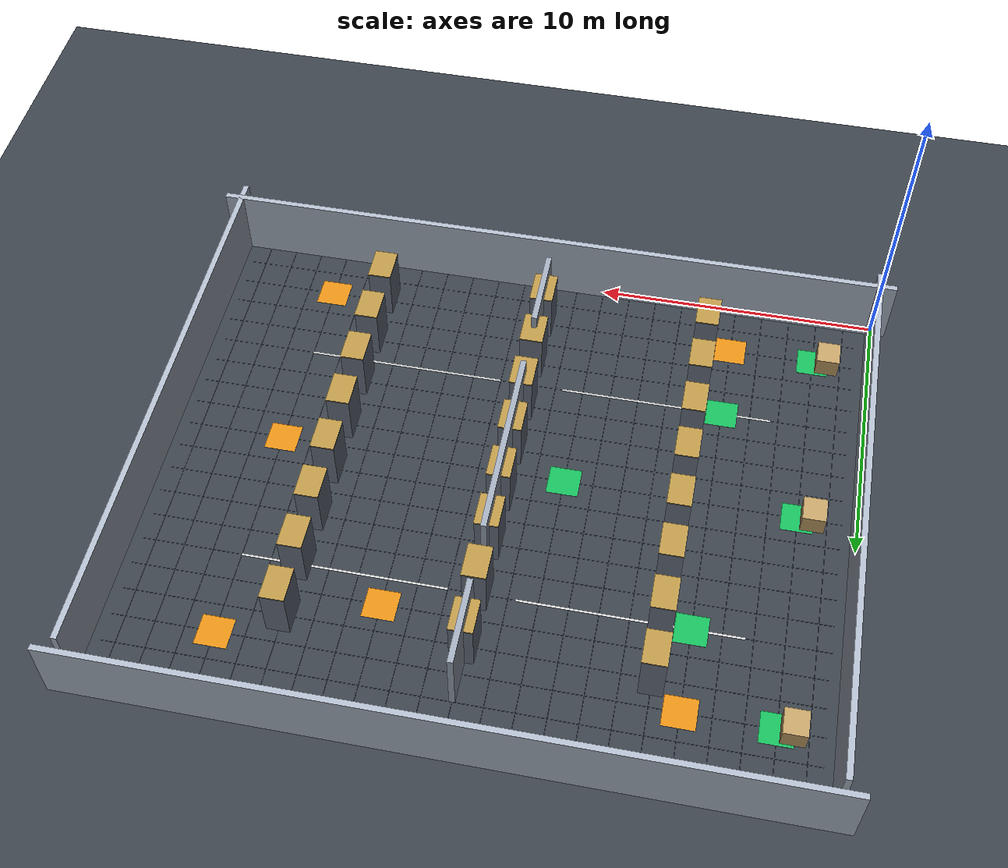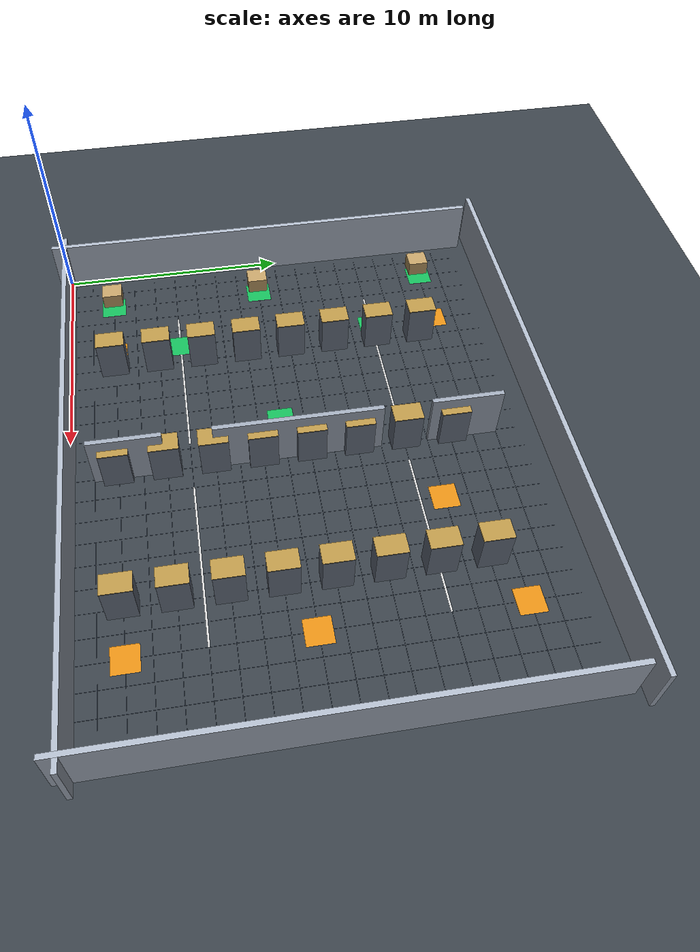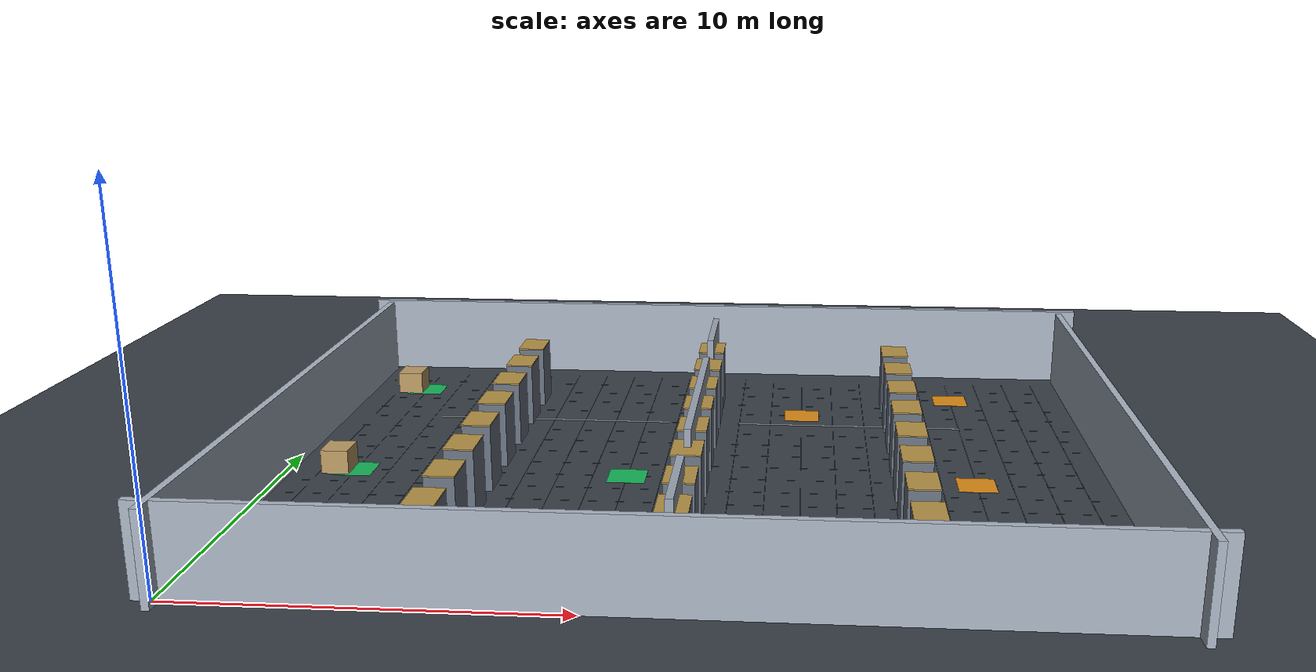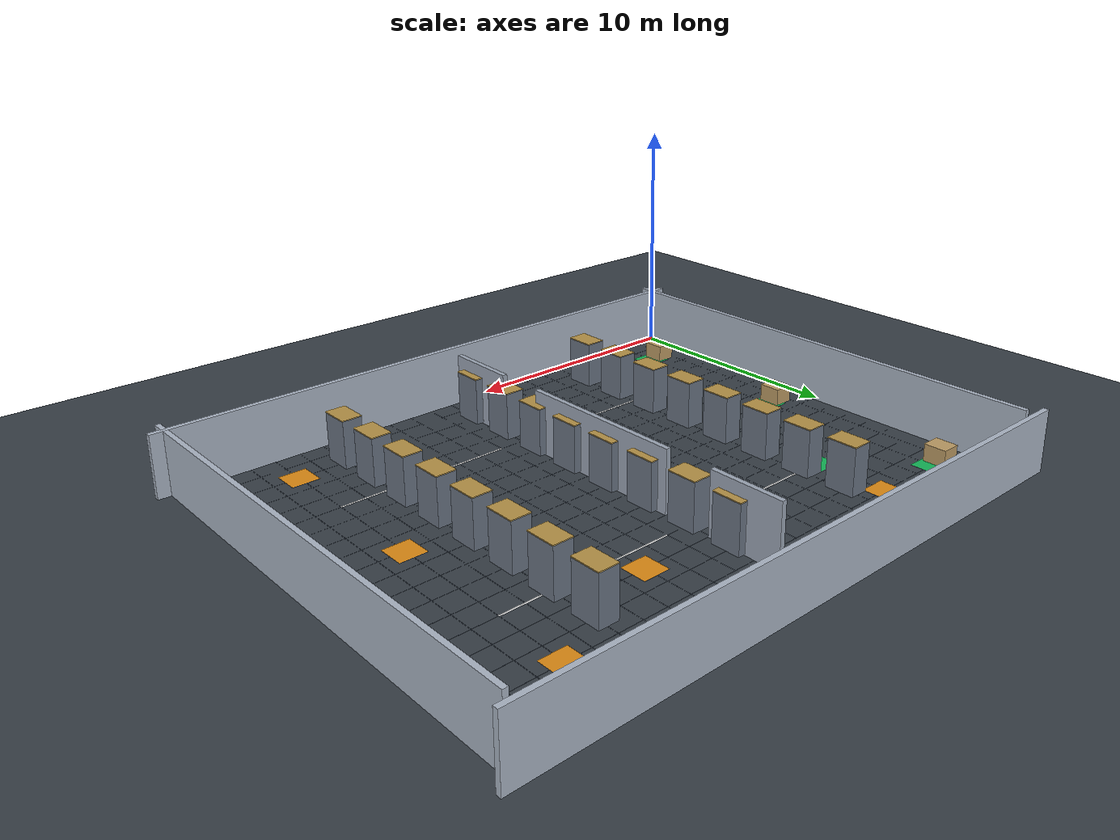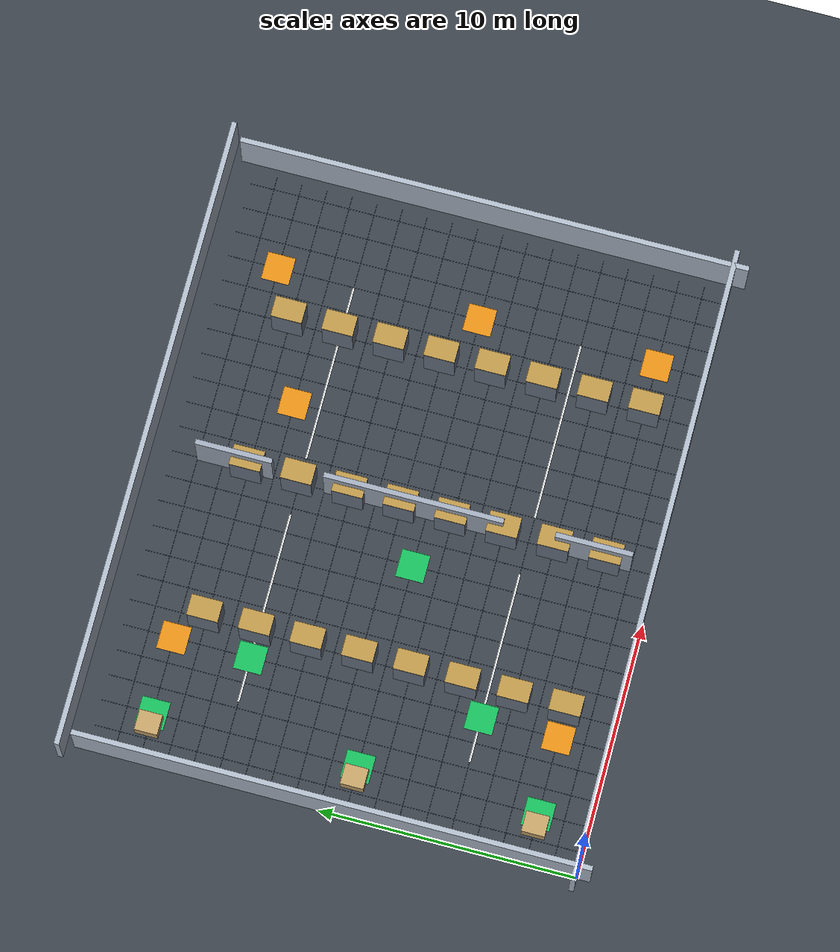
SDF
<?xml version="1.0"?>
<sdf version="1.10">
  <world name="warehouse_s4_debug">

        <physics name="default" type="ode">
      <real_time_update_rate>0</real_time_update_rate>
      <max_step_size>0.01</max_step_size>
      <real_time_factor>1.0</real_time_factor>
      <ode>
        <solver>
          <type>quick</type>
          <iters>30</iters>
          <sor>1.3</sor>
        </solver>
        <constraints>
          <cfm>0</cfm>
          <erp>0.2</erp>
          <contact_max_correcting_vel>100</contact_max_correcting_vel>
          <contact_surface_layer>0.001</contact_surface_layer>
        </constraints>
      </ode>
    </physics>

        <plugin filename="gz-sim-physics-system" name="gz::sim::systems::Physics"/>
    <plugin filename="gz-sim-user-commands-system" name="gz::sim::systems::UserCommands"/>
    <plugin filename="gz-sim-scene-broadcaster-system" name="gz::sim::systems::SceneBroadcaster"/>
    <plugin filename="gz-sim-sensors-system" name="gz::sim::systems::Sensors">
      <render_engine>ogre2</render_engine>
    </plugin>
    <plugin filename="gz-sim-imu-system" name="gz::sim::systems::Imu"/>
    <plugin filename="gz-sim-contact-system" name="gz::sim::systems::Contact"/>

    <gravity>0 0 -9.81</gravity>
    <magnetic_field>6e-06 2.3e-05 -4.2e-05</magnetic_field>
    <atmosphere type="adiabatic"/>

        <gui fullscreen="0">
      <plugin filename="MinimalScene" name="3D View">
        <gz-gui>
          <title>SIH26123 — DEBUG Mode</title>
          <property type="bool" key="showTitleBar">false</property>
          <property type="string" key="state">docked</property>
        </gz-gui>
        <engine>ogre2</engine>
        <scene>scene</scene>
        <ambient_light>0.5 0.5 0.5</ambient_light>
        <background_color>0.10 0.12 0.15</background_color>
        <camera_pose>12.5 -4.5 16.5 0 0.88 1.5708</camera_pose>
      </plugin>
      <plugin filename="GzSceneManager" name="Scene Manager">
        <gz-gui>
          <property key="resizable" type="bool">false</property>
          <property key="width" type="double">5</property>
          <property key="height" type="double">5</property>
          <property key="state" type="string">floating</property>
          <property key="showTitleBar" type="bool">false</property>
        </gz-gui>
      </plugin>
      <plugin filename="InteractiveViewControl" name="Interactive view control">
        <gz-gui>
          <property key="resizable" type="bool">false</property>
          <property key="width" type="double">5</property>
          <property key="height" type="double">5</property>
          <property key="state" type="string">floating</property>
          <property key="showTitleBar" type="bool">false</property>
        </gz-gui>
      </plugin>
      <plugin filename="CameraTracking" name="Camera Tracking">
        <gz-gui>
          <property key="resizable" type="bool">false</property>
          <property key="width" type="double">5</property>
          <property key="height" type="double">5</property>
          <property key="state" type="string">floating</property>
          <property key="showTitleBar" type="bool">false</property>
        </gz-gui>
      </plugin>
      <plugin filename="WorldControl" name="World control">
        <gz-gui>
          <title>World control</title>
          <property type="bool" key="showTitleBar">false</property>
          <property type="bool" key="resizable">false</property>
          <property type="double" key="height">72</property>
          <property type="double" key="z">1</property>
          <property type="string" key="state">floating</property>
          <anchors target="3D View">
            <line own="left" target="left"/>
            <line own="bottom" target="bottom"/>
          </anchors>
        </gz-gui>
        <play_pause>true</play_pause>
        <step>true</step>
        <start_paused>false</start_paused>
        <use_event>true</use_event>
      </plugin>
      <plugin filename="WorldStats" name="World stats">
        <gz-gui>
          <title>World stats</title>
          <property type="bool" key="showTitleBar">false</property>
          <property type="bool" key="resizable">false</property>
          <property type="double" key="height">110</property>
          <property type="double" key="width">290</property>
          <property type="double" key="z">1</property>
          <property type="string" key="state">floating</property>
          <anchors target="3D View">
            <line own="right" target="right"/>
            <line own="bottom" target="bottom"/>
          </anchors>
        </gz-gui>
        <sim_time>true</sim_time>
        <real_time>true</real_time>
        <real_time_factor>true</real_time_factor>
        <iterations>true</iterations>
      </plugin>
    </gui>

        <scene>
      <ambient>0.5 0.5 0.55 1</ambient>
      <background>0.10 0.12 0.15 1</background>
      <shadows>true</shadows>
      <grid>false</grid>
      <origin_visual>false</origin_visual>
    </scene>

        <light name="sun" type="directional">
      <cast_shadows>true</cast_shadows>
      <pose>0 0 10 0 0 0</pose>
      <diffuse>0.85 0.85 0.88 1</diffuse>
      <specular>0.15 0.15 0.15 1</specular>
      <attenuation>
        <range>1000</range>
        <constant>0.9</constant>
        <linear>0.01</linear>
        <quadratic>0.001</quadratic>
      </attenuation>
      <direction>-0.5 0.1 -0.9</direction>
    </light>

        <model name="ground_plane">
      <static>true</static>
      <link name="link">
        <collision name="collision">
          <geometry>
            <plane><normal>0 0 1</normal><size>25 20</size></plane>
          </geometry>
        </collision>
        <visual name="visual">
          <geometry>
            <plane><normal>0 0 1</normal><size>25 20</size></plane>
          </geometry>
          <material>
            <ambient>0.20 0.22 0.25 1</ambient>
            <diffuse>0.22 0.25 0.28 1</diffuse>
            <specular>0.08 0.08 0.08 1</specular>
          </material>
        </visual>
        <pose>12.0 9.5 0 0 0 0</pose>
      </link>
    </model>

        <model name="wall_west">
      <static>true</static>
      <pose>0.1 9.5 1.25 0 0 0</pose>
      <link name="link">
        <collision name="collision">
          <geometry><box><size>0.2 20.0 2.5</size></box></geometry>
        </collision>
        <visual name="visual">
          <geometry><box><size>0.2 20.0 2.5</size></box></geometry>
          <material>
            <ambient>0.60 0.63 0.68 1</ambient>
            <diffuse>0.68 0.72 0.78 1</diffuse>
            <specular>0.08 0.08 0.08 1</specular>
          </material>
        </visual>
      </link>
    </model>

    <model name="wall_east">
      <static>true</static>
      <pose>23.9 9.5 1.25 0 0 0</pose>
      <link name="link">
        <collision name="collision">
          <geometry><box><size>0.2 20.0 2.5</size></box></geometry>
        </collision>
        <visual name="visual">
          <geometry><box><size>0.2 20.0 2.5</size></box></geometry>
          <material>
            <ambient>0.60 0.63 0.68 1</ambient>
            <diffuse>0.68 0.72 0.78 1</diffuse>
            <specular>0.08 0.08 0.08 1</specular>
          </material>
        </visual>
      </link>
    </model>

    <model name="wall_south">
      <static>true</static>
      <pose>12.0 19.9 1.25 0 0 0</pose>
      <link name="link">
        <collision name="collision">
          <geometry><box><size>25.0 0.2 2.5</size></box></geometry>
        </collision>
        <visual name="visual">
          <geometry><box><size>25.0 0.2 2.5</size></box></geometry>
          <material>
            <ambient>0.60 0.63 0.68 1</ambient>
            <diffuse>0.68 0.72 0.78 1</diffuse>
            <specular>0.08 0.08 0.08 1</specular>
          </material>
        </visual>
      </link>
    </model>

    <model name="wall_north">
      <static>true</static>
      <pose>12.0 0.1 1.25 0 0 0</pose>
      <link name="link">
        <collision name="collision">
          <geometry><box><size>25.0 0.2 2.5</size></box></geometry>
        </collision>
        <visual name="visual">
          <geometry><box><size>25.0 0.2 2.5</size></box></geometry>
          <material>
            <ambient>0.60 0.63 0.68 1</ambient>
            <diffuse>0.68 0.72 0.78 1</diffuse>
            <specular>0.08 0.08 0.08 1</specular>
          </material>
        </visual>
      </link>
    </model>

        <model name="wall_choke_010">
      <static>true</static>
      <pose>12.0 2.50 1.25 0 0 0</pose>
      <link name="link">
        <collision name="col">
          <geometry><box><size>0.2 3.0 2.5</size></box></geometry>
        </collision>
        <visual name="vis">
          <geometry><box><size>0.2 3.0 2.5</size></box></geometry>
          <material>
            <ambient>0.55 0.58 0.62 1</ambient>
            <diffuse>0.62 0.66 0.72 1</diffuse>
            <specular>0 0 0 0</specular>
          </material>
        </visual>
      </link>
    </model>

    <model name="wall_choke_060">
      <static>true</static>
      <pose>12.0 9.50 1.25 0 0 0</pose>
      <link name="link">
        <collision name="col">
          <geometry><box><size>0.2 7.0 2.5</size></box></geometry>
        </collision>
        <visual name="vis">
          <geometry><box><size>0.2 7.0 2.5</size></box></geometry>
          <material>
            <ambient>0.55 0.58 0.62 1</ambient>
            <diffuse>0.62 0.66 0.72 1</diffuse>
            <specular>0 0 0 0</specular>
          </material>
        </visual>
      </link>
    </model>

    <model name="wall_choke_150">
      <static>true</static>
      <pose>12.0 16.50 1.25 0 0 0</pose>
      <link name="link">
        <collision name="col">
          <geometry><box><size>0.2 3.0 2.5</size></box></geometry>
        </collision>
        <visual name="vis">
          <geometry><box><size>0.2 3.0 2.5</size></box></geometry>
          <material>
            <ambient>0.55 0.58 0.62 1</ambient>
            <diffuse>0.62 0.66 0.72 1</diffuse>
            <specular>0 0 0 0</specular>
          </material>
        </visual>
      </link>
    </model>

        <model name="floor_grid">
      <static>true</static>
      <pose>0 0 0 0 0 0</pose>
      <link name="link">
        <visual name="gx_01"><pose>1.0 9.5 0.001 0 0 0</pose><geometry><box><size>0.015 19.0 0.001</size></box></geometry><material><ambient>0.13 0.17 0.22 1</ambient><diffuse>0.15 0.19 0.25 1</diffuse></material></visual>
    <visual name="gx_02"><pose>2.0 9.5 0.001 0 0 0</pose><geometry><box><size>0.015 19.0 0.001</size></box></geometry><material><ambient>0.13 0.17 0.22 1</ambient><diffuse>0.15 0.19 0.25 1</diffuse></material></visual>
    <visual name="gx_03"><pose>3.0 9.5 0.001 0 0 0</pose><geometry><box><size>0.015 19.0 0.001</size></box></geometry><material><ambient>0.13 0.17 0.22 1</ambient><diffuse>0.15 0.19 0.25 1</diffuse></material></visual>
    <visual name="gx_04"><pose>4.0 9.5 0.001 0 0 0</pose><geometry><box><size>0.015 19.0 0.001</size></box></geometry><material><ambient>0.13 0.17 0.22 1</ambient><diffuse>0.15 0.19 0.25 1</diffuse></material></visual>
    <visual name="gx_05"><pose>5.0 9.5 0.001 0 0 0</pose><geometry><box><size>0.015 19.0 0.001</size></box></geometry><material><ambient>0.13 0.17 0.22 1</ambient><diffuse>0.15 0.19 0.25 1</diffuse></material></visual>
    <visual name="gx_06"><pose>6.0 9.5 0.001 0 0 0</pose><geometry><box><size>0.015 19.0 0.001</size></box></geometry><material><ambient>0.13 0.17 0.22 1</ambient><diffuse>0.15 0.19 0.25 1</diffuse></material></visual>
    <visual name="gx_07"><pose>7.0 9.5 0.001 0 0 0</pose><geometry><box><size>0.015 19.0 0.001</size></box></geometry><material><ambient>0.13 0.17 0.22 1</ambient><diffuse>0.15 0.19 0.25 1</diffuse></material></visual>
    <visual name="gx_08"><pose>8.0 9.5 0.001 0 0 0</pose><geometry><box><size>0.015 19.0 0.001</size></box></geometry><material><ambient>0.13 0.17 0.22 1</ambient><diffuse>0.15 0.19 0.25 1</diffuse></material></visual>
    <visual name="gx_09"><pose>9.0 9.5 0.001 0 0 0</pose><geometry><box><size>0.015 19.0 0.001</size></box></geometry><material><ambient>0.13 0.17 0.22 1</ambient><diffuse>0.15 0.19 0.25 1</diffuse></material></visual>
    <visual name="gx_10"><pose>10.0 9.5 0.001 0 0 0</pose><geometry><box><size>0.015 19.0 0.001</size></box></geometry><material><ambient>0.13 0.17 0.22 1</ambient><diffuse>0.15 0.19 0.25 1</diffuse></material></visual>
    <visual name="gx_11"><pose>11.0 9.5 0.001 0 0 0</pose><geometry><box><size>0.015 19.0 0.001</size></box></geometry><material><ambient>0.13 0.17 0.22 1</ambient><diffuse>0.15 0.19 0.25 1</diffuse></material></visual>
    <visual name="gx_12"><pose>12.0 9.5 0.001 0 0 0</pose><geometry><box><size>0.015 19.0 0.001</size></box></geometry><material><ambient>0.13 0.17 0.22 1</ambient><diffuse>0.15 0.19 0.25 1</diffuse></material></visual>
    <visual name="gx_13"><pose>13.0 9.5 0.001 0 0 0</pose><geometry><box><size>0.015 19.0 0.001</size></box></geometry><material><ambient>0.13 0.17 0.22 1</ambient><diffuse>0.15 0.19 0.25 1</diffuse></material></visual>
    <visual name="gx_14"><pose>14.0 9.5 0.001 0 0 0</pose><geometry><box><size>0.015 19.0 0.001</size></box></geometry><material><ambient>0.13 0.17 0.22 1</ambient><diffuse>0.15 0.19 0.25 1</diffuse></material></visual>
    <visual name="gx_15"><pose>15.0 9.5 0.001 0 0 0</pose><geometry><box><size>0.015 19.0 0.001</size></box></geometry><material><ambient>0.13 0.17 0.22 1</ambient><diffuse>0.15 0.19 0.25 1</diffuse></material></visual>
    <visual name="gx_16"><pose>16.0 9.5 0.001 0 0 0</pose><geometry><box><size>0.015 19.0 0.001</size></box></geometry><material><ambient>0.13 0.17 0.22 1</ambient><diffuse>0.15 0.19 0.25 1</diffuse></material></visual>
    <visual name="gx_17"><pose>17.0 9.5 0.001 0 0 0</pose><geometry><box><size>0.015 19.0 0.001</size></box></geometry><material><ambient>0.13 0.17 0.22 1</ambient><diffuse>0.15 0.19 0.25 1</diffuse></material></visual>
    <visual name="gx_18"><pose>18.0 9.5 0.001 0 0 0</pose><geometry><box><size>0.015 19.0 0.001</size></box></geometry><material><ambient>0.13 0.17 0.22 1</ambient><diffuse>0.15 0.19 0.25 1</diffuse></material></visual>
    <visual name="gx_19"><pose>19.0 9.5 0.001 0 0 0</pose><geometry><box><size>0.015 19.0 0.001</size></box></geometry><material><ambient>0.13 0.17 0.22 1</ambient><diffuse>0.15 0.19 0.25 1</diffuse></material></visual>
    <visual name="gx_20"><pose>20.0 9.5 0.001 0 0 0</pose><geometry><box><size>0.015 19.0 0.001</size></box></geometry><material><ambient>0.13 0.17 0.22 1</ambient><diffuse>0.15 0.19 0.25 1</diffuse></material></visual>
    <visual name="gx_21"><pose>21.0 9.5 0.001 0 0 0</pose><geometry><box><size>0.015 19.0 0.001</size></box></geometry><material><ambient>0.13 0.17 0.22 1</ambient><diffuse>0.15 0.19 0.25 1</diffuse></material></visual>
    <visual name="gx_22"><pose>22.0 9.5 0.001 0 0 0</pose><geometry><box><size>0.015 19.0 0.001</size></box></geometry><material><ambient>0.13 0.17 0.22 1</ambient><diffuse>0.15 0.19 0.25 1</diffuse></material></visual>
    <visual name="gx_23"><pose>23.0 9.5 0.001 0 0 0</pose><geometry><box><size>0.015 19.0 0.001</size></box></geometry><material><ambient>0.13 0.17 0.22 1</ambient><diffuse>0.15 0.19 0.25 1</diffuse></material></visual>
    <visual name="gy_01"><pose>12.0 1.0 0.001 0 0 0</pose><geometry><box><size>23.0 0.015 0.001</size></box></geometry><material><ambient>0.13 0.17 0.22 1</ambient><diffuse>0.15 0.19 0.25 1</diffuse></material></visual>
    <visual name="gy_02"><pose>12.0 2.0 0.001 0 0 0</pose><geometry><box><size>23.0 0.015 0.001</size></box></geometry><material><ambient>0.13 0.17 0.22 1</ambient><diffuse>0.15 0.19 0.25 1</diffuse></material></visual>
    <visual name="gy_03"><pose>12.0 3.0 0.001 0 0 0</pose><geometry><box><size>23.0 0.015 0.001</size></box></geometry><material><ambient>0.13 0.17 0.22 1</ambient><diffuse>0.15 0.19 0.25 1</diffuse></material></visual>
    <visual name="gy_04"><pose>12.0 4.0 0.001 0 0 0</pose><geometry><box><size>23.0 0.015 0.001</size></box></geometry><material><ambient>0.13 0.17 0.22 1</ambient><diffuse>0.15 0.19 0.25 1</diffuse></material></visual>
    <visual name="gy_05"><pose>12.0 5.0 0.001 0 0 0</pose><geometry><box><size>23.0 0.015 0.001</size></box></geometry><material><ambient>0.13 0.17 0.22 1</ambient><diffuse>0.15 0.19 0.25 1</diffuse></material></visual>
    <visual name="gy_06"><pose>12.0 6.0 0.001 0 0 0</pose><geometry><box><size>23.0 0.015 0.001</size></box></geometry><material><ambient>0.13 0.17 0.22 1</ambient><diffuse>0.15 0.19 0.25 1</diffuse></material></visual>
    <visual name="gy_07"><pose>12.0 7.0 0.001 0 0 0</pose><geometry><box><size>23.0 0.015 0.001</size></box></geometry><material><ambient>0.13 0.17 0.22 1</ambient><diffuse>0.15 0.19 0.25 1</diffuse></material></visual>
    <visual name="gy_08"><pose>12.0 8.0 0.001 0 0 0</pose><geometry><box><size>23.0 0.015 0.001</size></box></geometry><material><ambient>0.13 0.17 0.22 1</ambient><diffuse>0.15 0.19 0.25 1</diffuse></material></visual>
    <visual name="gy_09"><pose>12.0 9.0 0.001 0 0 0</pose><geometry><box><size>23.0 0.015 0.001</size></box></geometry><material><ambient>0.13 0.17 0.22 1</ambient><diffuse>0.15 0.19 0.25 1</diffuse></material></visual>
    <visual name="gy_10"><pose>12.0 10.0 0.001 0 0 0</pose><geometry><box><size>23.0 0.015 0.001</size></box></geometry><material><ambient>0.13 0.17 0.22 1</ambient><diffuse>0.15 0.19 0.25 1</diffuse></material></visual>
    <visual name="gy_11"><pose>12.0 11.0 0.001 0 0 0</pose><geometry><box><size>23.0 0.015 0.001</size></box></geometry><material><ambient>0.13 0.17 0.22 1</ambient><diffuse>0.15 0.19 0.25 1</diffuse></material></visual>
    <visual name="gy_12"><pose>12.0 12.0 0.001 0 0 0</pose><geometry><box><size>23.0 0.015 0.001</size></box></geometry><material><ambient>0.13 0.17 0.22 1</ambient><diffuse>0.15 0.19 0.25 1</diffuse></material></visual>
    <visual name="gy_13"><pose>12.0 13.0 0.001 0 0 0</pose><geometry><box><size>23.0 0.015 0.001</size></box></geometry><material><ambient>0.13 0.17 0.22 1</ambient><diffuse>0.15 0.19 0.25 1</diffuse></material></visual>
    <visual name="gy_14"><pose>12.0 14.0 0.001 0 0 0</pose><geometry><box><size>23.0 0.015 0.001</size></box></geometry><material><ambient>0.13 0.17 0.22 1</ambient><diffuse>0.15 0.19 0.25 1</diffuse></material></visual>
    <visual name="gy_15"><pose>12.0 15.0 0.001 0 0 0</pose><geometry><box><size>23.0 0.015 0.001</size></box></geometry><material><ambient>0.13 0.17 0.22 1</ambient><diffuse>0.15 0.19 0.25 1</diffuse></material></visual>
    <visual name="gy_16"><pose>12.0 16.0 0.001 0 0 0</pose><geometry><box><size>23.0 0.015 0.001</size></box></geometry><material><ambient>0.13 0.17 0.22 1</ambient><diffuse>0.15 0.19 0.25 1</diffuse></material></visual>
    <visual name="gy_17"><pose>12.0 17.0 0.001 0 0 0</pose><geometry><box><size>23.0 0.015 0.001</size></box></geometry><material><ambient>0.13 0.17 0.22 1</ambient><diffuse>0.15 0.19 0.25 1</diffuse></material></visual>
    <visual name="gy_18"><pose>12.0 18.0 0.001 0 0 0</pose><geometry><box><size>23.0 0.015 0.001</size></box></geometry><material><ambient>0.13 0.17 0.22 1</ambient><diffuse>0.15 0.19 0.25 1</diffuse></material></visual>
      </link>
    </model>

        <model name="ln_NW">
      <static>true</static>
      <pose>7.0 14.0 0.002 0 0 0</pose>
      <link name="link">
        <visual name="lane">
          <geometry><box><size>7.5 0.08 0.002</size></box></geometry>
          <material>
            <ambient>0.75 0.75 0.75 1</ambient>
            <diffuse>0.85 0.85 0.85 1</diffuse>
            <specular>0 0 0 0</specular>
          </material>
        </visual>
      </link>
    </model>

    <model name="ln_NE">
      <static>true</static>
      <pose>16.5 14.0 0.002 0 0 0</pose>
      <link name="link">
        <visual name="lane">
          <geometry><box><size>7.0 0.08 0.002</size></box></geometry>
          <material>
            <ambient>0.75 0.75 0.75 1</ambient>
            <diffuse>0.85 0.85 0.85 1</diffuse>
            <specular>0 0 0 0</specular>
          </material>
        </visual>
      </link>
    </model>

    <model name="ln_SW">
      <static>true</static>
      <pose>7.0 5.0 0.002 0 0 0</pose>
      <link name="link">
        <visual name="lane">
          <geometry><box><size>7.5 0.08 0.002</size></box></geometry>
          <material>
            <ambient>0.75 0.75 0.75 1</ambient>
            <diffuse>0.85 0.85 0.85 1</diffuse>
            <specular>0 0 0 0</specular>
          </material>
        </visual>
      </link>
    </model>

    <model name="ln_SE">
      <static>true</static>
      <pose>16.5 5.0 0.002 0 0 0</pose>
      <link name="link">
        <visual name="lane">
          <geometry><box><size>7.0 0.08 0.002</size></box></geometry>
          <material>
            <ambient>0.75 0.75 0.75 1</ambient>
            <diffuse>0.85 0.85 0.85 1</diffuse>
            <specular>0 0 0 0</specular>
          </material>
        </visual>
      </link>
    </model>

        <model name="pad_P1">
      <static>true</static>
      <pose>2.0 17.0 0.003 0 0 0</pose>
      <link name="link">
        <visual name="pad">
          <geometry><box><size>1.10 1.10 0.004</size></box></geometry>
          <material>
            <ambient>0.08 0.72 0.35 1</ambient>
            <diffuse>0.08 0.72 0.35 1</diffuse>
            <specular>0 0 0 0</specular>
          </material>
        </visual>
      </link>
    </model>

    <model name="pad_P2">
      <static>true</static>
      <pose>2.0 9.0 0.003 0 0 0</pose>
      <link name="link">
        <visual name="pad">
          <geometry><box><size>1.10 1.10 0.004</size></box></geometry>
          <material>
            <ambient>0.08 0.72 0.35 1</ambient>
            <diffuse>0.08 0.72 0.35 1</diffuse>
            <specular>0 0 0 0</specular>
          </material>
        </visual>
      </link>
    </model>

    <model name="pad_P3">
      <static>true</static>
      <pose>2.0 2.0 0.003 0 0 0</pose>
      <link name="link">
        <visual name="pad">
          <geometry><box><size>1.10 1.10 0.004</size></box></geometry>
          <material>
            <ambient>0.08 0.72 0.35 1</ambient>
            <diffuse>0.08 0.72 0.35 1</diffuse>
            <specular>0 0 0 0</specular>
          </material>
        </visual>
      </link>
    </model>

    <model name="pad_P4">
      <static>true</static>
      <pose>5.0 5.0 0.003 0 0 0</pose>
      <link name="link">
        <visual name="pad">
          <geometry><box><size>1.10 1.10 0.004</size></box></geometry>
          <material>
            <ambient>0.08 0.72 0.35 1</ambient>
            <diffuse>0.08 0.72 0.35 1</diffuse>
            <specular>0 0 0 0</specular>
          </material>
        </visual>
      </link>
    </model>

    <model name="pad_P5">
      <static>true</static>
      <pose>5.0 14.0 0.003 0 0 0</pose>
      <link name="link">
        <visual name="pad">
          <geometry><box><size>1.10 1.10 0.004</size></box></geometry>
          <material>
            <ambient>0.08 0.72 0.35 1</ambient>
            <diffuse>0.08 0.72 0.35 1</diffuse>
            <specular>0 0 0 0</specular>
          </material>
        </visual>
      </link>
    </model>

    <model name="pad_P6">
      <static>true</static>
      <pose>10.0 9.0 0.003 0 0 0</pose>
      <link name="link">
        <visual name="pad">
          <geometry><box><size>1.10 1.10 0.004</size></box></geometry>
          <material>
            <ambient>0.08 0.72 0.35 1</ambient>
            <diffuse>0.08 0.72 0.35 1</diffuse>
            <specular>0 0 0 0</specular>
          </material>
        </visual>
      </link>
    </model>

    <model name="pad_D1">
      <static>true</static>
      <pose>20.0 17.0 0.003 0 0 0</pose>
      <link name="link">
        <visual name="pad">
          <geometry><box><size>1.10 1.10 0.004</size></box></geometry>
          <material>
            <ambient>0.88 0.55 0.08 1</ambient>
            <diffuse>0.88 0.55 0.08 1</diffuse>
            <specular>0 0 0 0</specular>
          </material>
        </visual>
      </link>
    </model>

    <model name="pad_D2">
      <static>true</static>
      <pose>20.0 9.0 0.003 0 0 0</pose>
      <link name="link">
        <visual name="pad">
          <geometry><box><size>1.10 1.10 0.004</size></box></geometry>
          <material>
            <ambient>0.88 0.55 0.08 1</ambient>
            <diffuse>0.88 0.55 0.08 1</diffuse>
            <specular>0 0 0 0</specular>
          </material>
        </visual>
      </link>
    </model>

    <model name="pad_D3">
      <static>true</static>
      <pose>20.0 2.0 0.003 0 0 0</pose>
      <link name="link">
        <visual name="pad">
          <geometry><box><size>1.10 1.10 0.004</size></box></geometry>
          <material>
            <ambient>0.88 0.55 0.08 1</ambient>
            <diffuse>0.88 0.55 0.08 1</diffuse>
            <specular>0 0 0 0</specular>
          </material>
        </visual>
      </link>
    </model>

    <model name="pad_D4">
      <static>true</static>
      <pose>15.0 15.0 0.003 0 0 0</pose>
      <link name="link">
        <visual name="pad">
          <geometry><box><size>1.10 1.10 0.004</size></box></geometry>
          <material>
            <ambient>0.88 0.55 0.08 1</ambient>
            <diffuse>0.88 0.55 0.08 1</diffuse>
            <specular>0 0 0 0</specular>
          </material>
        </visual>
      </link>
    </model>

    <model name="pad_D5">
      <static>true</static>
      <pose>5.0 17.0 0.003 0 0 0</pose>
      <link name="link">
        <visual name="pad">
          <geometry><box><size>1.10 1.10 0.004</size></box></geometry>
          <material>
            <ambient>0.88 0.55 0.08 1</ambient>
            <diffuse>0.88 0.55 0.08 1</diffuse>
            <specular>0 0 0 0</specular>
          </material>
        </visual>
      </link>
    </model>

    <model name="pad_D6">
      <static>true</static>
      <pose>5.0 2.0 0.003 0 0 0</pose>
      <link name="link">
        <visual name="pad">
          <geometry><box><size>1.10 1.10 0.004</size></box></geometry>
          <material>
            <ambient>0.88 0.55 0.08 1</ambient>
            <diffuse>0.88 0.55 0.08 1</diffuse>
            <specular>0 0 0 0</specular>
          </material>
        </visual>
      </link>
    </model>

        <model name="cargo_1">
      <static>true</static>
      <pose>1.5 17.0 0.35 0 0 0</pose>
      <link name="link">
        <visual name="stack">
          <geometry><box><size>0.80 0.90 0.70</size></box></geometry>
          <material>
            <ambient>0.62 0.50 0.32 1</ambient>
            <diffuse>0.75 0.62 0.40 1</diffuse>
            <specular>0 0 0 0</specular>
          </material>
        </visual>
      </link>
    </model>

    <model name="cargo_2">
      <static>true</static>
      <pose>1.5 9.0 0.35 0 0 0</pose>
      <link name="link">
        <visual name="stack">
          <geometry><box><size>0.80 0.90 0.70</size></box></geometry>
          <material>
            <ambient>0.62 0.50 0.32 1</ambient>
            <diffuse>0.75 0.62 0.40 1</diffuse>
            <specular>0 0 0 0</specular>
          </material>
        </visual>
      </link>
    </model>

    <model name="cargo_3">
      <static>true</static>
      <pose>1.5 2.0 0.35 0 0 0</pose>
      <link name="link">
        <visual name="stack">
          <geometry><box><size>0.80 0.90 0.70</size></box></geometry>
          <material>
            <ambient>0.62 0.50 0.32 1</ambient>
            <diffuse>0.75 0.62 0.40 1</diffuse>
            <specular>0 0 0 0</specular>
          </material>
        </visual>
      </link>
    </model>

        <model name="shelf_row_A_01">
      <static>true</static>
      <pose>6.0 2.0 1.0 0 0 0</pose>
      <link name="link">
        <collision name="col">
          <geometry><box><size>0.8 1.2 2.0</size></box></geometry>
        </collision>
        <visual name="vis_body">
          <geometry><box><size>0.80 1.20 1.90</size></box></geometry>
          <material>
            <ambient>0.35 0.38 0.42 1</ambient>
            <diffuse>0.42 0.46 0.52 1</diffuse>
            <specular>0.05 0.05 0.05 1</specular>
          </material>
        </visual>
        <visual name="vis_top">
          <pose>0 0 0.97 0 0 0</pose>
          <geometry><box><size>0.82 1.22 0.04</size></box></geometry>
          <material>
            <ambient>0.62 0.48 0.22 1</ambient>
            <diffuse>0.72 0.58 0.28 1</diffuse>
            <specular>0 0 0 0</specular>
          </material>
        </visual>
      </link>
    </model>

    <model name="shelf_row_A_02">
      <static>true</static>
      <pose>6.0 4.0 1.0 0 0 0</pose>
      <link name="link">
        <collision name="col">
          <geometry><box><size>0.8 1.2 2.0</size></box></geometry>
        </collision>
        <visual name="vis_body">
          <geometry><box><size>0.80 1.20 1.90</size></box></geometry>
          <material>
            <ambient>0.35 0.38 0.42 1</ambient>
            <diffuse>0.42 0.46 0.52 1</diffuse>
            <specular>0.05 0.05 0.05 1</specular>
          </material>
        </visual>
        <visual name="vis_top">
          <pose>0 0 0.97 0 0 0</pose>
          <geometry><box><size>0.82 1.22 0.04</size></box></geometry>
          <material>
            <ambient>0.62 0.48 0.22 1</ambient>
            <diffuse>0.72 0.58 0.28 1</diffuse>
            <specular>0 0 0 0</specular>
          </material>
        </visual>
      </link>
    </model>

    <model name="shelf_row_A_03">
      <static>true</static>
      <pose>6.0 6.0 1.0 0 0 0</pose>
      <link name="link">
        <collision name="col">
          <geometry><box><size>0.8 1.2 2.0</size></box></geometry>
        </collision>
        <visual name="vis_body">
          <geometry><box><size>0.80 1.20 1.90</size></box></geometry>
          <material>
            <ambient>0.35 0.38 0.42 1</ambient>
            <diffuse>0.42 0.46 0.52 1</diffuse>
            <specular>0.05 0.05 0.05 1</specular>
          </material>
        </visual>
        <visual name="vis_top">
          <pose>0 0 0.97 0 0 0</pose>
          <geometry><box><size>0.82 1.22 0.04</size></box></geometry>
          <material>
            <ambient>0.62 0.48 0.22 1</ambient>
            <diffuse>0.72 0.58 0.28 1</diffuse>
            <specular>0 0 0 0</specular>
          </material>
        </visual>
      </link>
    </model>

    <model name="shelf_row_A_04">
      <static>true</static>
      <pose>6.0 8.0 1.0 0 0 0</pose>
      <link name="link">
        <collision name="col">
          <geometry><box><size>0.8 1.2 2.0</size></box></geometry>
        </collision>
        <visual name="vis_body">
          <geometry><box><size>0.80 1.20 1.90</size></box></geometry>
          <material>
            <ambient>0.35 0.38 0.42 1</ambient>
            <diffuse>0.42 0.46 0.52 1</diffuse>
            <specular>0.05 0.05 0.05 1</specular>
          </material>
        </visual>
        <visual name="vis_top">
          <pose>0 0 0.97 0 0 0</pose>
          <geometry><box><size>0.82 1.22 0.04</size></box></geometry>
          <material>
            <ambient>0.62 0.48 0.22 1</ambient>
            <diffuse>0.72 0.58 0.28 1</diffuse>
            <specular>0 0 0 0</specular>
          </material>
        </visual>
      </link>
    </model>

    <model name="shelf_row_B_01">
      <static>true</static>
      <pose>6.0 10.0 1.0 0 0 0</pose>
      <link name="link">
        <collision name="col">
          <geometry><box><size>0.8 1.2 2.0</size></box></geometry>
        </collision>
        <visual name="vis_body">
          <geometry><box><size>0.80 1.20 1.90</size></box></geometry>
          <material>
            <ambient>0.35 0.38 0.42 1</ambient>
            <diffuse>0.42 0.46 0.52 1</diffuse>
            <specular>0.05 0.05 0.05 1</specular>
          </material>
        </visual>
        <visual name="vis_top">
          <pose>0 0 0.97 0 0 0</pose>
          <geometry><box><size>0.82 1.22 0.04</size></box></geometry>
          <material>
            <ambient>0.62 0.48 0.22 1</ambient>
            <diffuse>0.72 0.58 0.28 1</diffuse>
            <specular>0 0 0 0</specular>
          </material>
        </visual>
      </link>
    </model>

    <model name="shelf_row_B_02">
      <static>true</static>
      <pose>6.0 12.0 1.0 0 0 0</pose>
      <link name="link">
        <collision name="col">
          <geometry><box><size>0.8 1.2 2.0</size></box></geometry>
        </collision>
        <visual name="vis_body">
          <geometry><box><size>0.80 1.20 1.90</size></box></geometry>
          <material>
            <ambient>0.35 0.38 0.42 1</ambient>
            <diffuse>0.42 0.46 0.52 1</diffuse>
            <specular>0.05 0.05 0.05 1</specular>
          </material>
        </visual>
        <visual name="vis_top">
          <pose>0 0 0.97 0 0 0</pose>
          <geometry><box><size>0.82 1.22 0.04</size></box></geometry>
          <material>
            <ambient>0.62 0.48 0.22 1</ambient>
            <diffuse>0.72 0.58 0.28 1</diffuse>
            <specular>0 0 0 0</specular>
          </material>
        </visual>
      </link>
    </model>

    <model name="shelf_row_B_03">
      <static>true</static>
      <pose>6.0 14.0 1.0 0 0 0</pose>
      <link name="link">
        <collision name="col">
          <geometry><box><size>0.8 1.2 2.0</size></box></geometry>
        </collision>
        <visual name="vis_body">
          <geometry><box><size>0.80 1.20 1.90</size></box></geometry>
          <material>
            <ambient>0.35 0.38 0.42 1</ambient>
            <diffuse>0.42 0.46 0.52 1</diffuse>
            <specular>0.05 0.05 0.05 1</specular>
          </material>
        </visual>
        <visual name="vis_top">
          <pose>0 0 0.97 0 0 0</pose>
          <geometry><box><size>0.82 1.22 0.04</size></box></geometry>
          <material>
            <ambient>0.62 0.48 0.22 1</ambient>
            <diffuse>0.72 0.58 0.28 1</diffuse>
            <specular>0 0 0 0</specular>
          </material>
        </visual>
      </link>
    </model>

    <model name="shelf_row_B_04">
      <static>true</static>
      <pose>6.0 16.0 1.0 0 0 0</pose>
      <link name="link">
        <collision name="col">
          <geometry><box><size>0.8 1.2 2.0</size></box></geometry>
        </collision>
        <visual name="vis_body">
          <geometry><box><size>0.80 1.20 1.90</size></box></geometry>
          <material>
            <ambient>0.35 0.38 0.42 1</ambient>
            <diffuse>0.42 0.46 0.52 1</diffuse>
            <specular>0.05 0.05 0.05 1</specular>
          </material>
        </visual>
        <visual name="vis_top">
          <pose>0 0 0.97 0 0 0</pose>
          <geometry><box><size>0.82 1.22 0.04</size></box></geometry>
          <material>
            <ambient>0.62 0.48 0.22 1</ambient>
            <diffuse>0.72 0.58 0.28 1</diffuse>
            <specular>0 0 0 0</specular>
          </material>
        </visual>
      </link>
    </model>

    <model name="shelf_row_C_01">
      <static>true</static>
      <pose>12.0 2.0 1.0 0 0 0</pose>
      <link name="link">
        <collision name="col">
          <geometry><box><size>0.8 1.2 2.0</size></box></geometry>
        </collision>
        <visual name="vis_body">
          <geometry><box><size>0.80 1.20 1.90</size></box></geometry>
          <material>
            <ambient>0.35 0.38 0.42 1</ambient>
            <diffuse>0.42 0.46 0.52 1</diffuse>
            <specular>0.05 0.05 0.05 1</specular>
          </material>
        </visual>
        <visual name="vis_top">
          <pose>0 0 0.97 0 0 0</pose>
          <geometry><box><size>0.82 1.22 0.04</size></box></geometry>
          <material>
            <ambient>0.62 0.48 0.22 1</ambient>
            <diffuse>0.72 0.58 0.28 1</diffuse>
            <specular>0 0 0 0</specular>
          </material>
        </visual>
      </link>
    </model>

    <model name="shelf_row_C_02">
      <static>true</static>
      <pose>12.0 4.0 1.0 0 0 0</pose>
      <link name="link">
        <collision name="col">
          <geometry><box><size>0.8 1.2 2.0</size></box></geometry>
        </collision>
        <visual name="vis_body">
          <geometry><box><size>0.80 1.20 1.90</size></box></geometry>
          <material>
            <ambient>0.35 0.38 0.42 1</ambient>
            <diffuse>0.42 0.46 0.52 1</diffuse>
            <specular>0.05 0.05 0.05 1</specular>
          </material>
        </visual>
        <visual name="vis_top">
          <pose>0 0 0.97 0 0 0</pose>
          <geometry><box><size>0.82 1.22 0.04</size></box></geometry>
          <material>
            <ambient>0.62 0.48 0.22 1</ambient>
            <diffuse>0.72 0.58 0.28 1</diffuse>
            <specular>0 0 0 0</specular>
          </material>
        </visual>
      </link>
    </model>

    <model name="shelf_row_C_03">
      <static>true</static>
      <pose>12.0 6.0 1.0 0 0 0</pose>
      <link name="link">
        <collision name="col">
          <geometry><box><size>0.8 1.2 2.0</size></box></geometry>
        </collision>
        <visual name="vis_body">
          <geometry><box><size>0.80 1.20 1.90</size></box></geometry>
          <material>
            <ambient>0.35 0.38 0.42 1</ambient>
            <diffuse>0.42 0.46 0.52 1</diffuse>
            <specular>0.05 0.05 0.05 1</specular>
          </material>
        </visual>
        <visual name="vis_top">
          <pose>0 0 0.97 0 0 0</pose>
          <geometry><box><size>0.82 1.22 0.04</size></box></geometry>
          <material>
            <ambient>0.62 0.48 0.22 1</ambient>
            <diffuse>0.72 0.58 0.28 1</diffuse>
            <specular>0 0 0 0</specular>
          </material>
        </visual>
      </link>
    </model>

    <model name="shelf_row_C_04">
      <static>true</static>
      <pose>12.0 8.0 1.0 0 0 0</pose>
      <link name="link">
        <collision name="col">
          <geometry><box><size>0.8 1.2 2.0</size></box></geometry>
        </collision>
        <visual name="vis_body">
          <geometry><box><size>0.80 1.20 1.90</size></box></geometry>
          <material>
            <ambient>0.35 0.38 0.42 1</ambient>
            <diffuse>0.42 0.46 0.52 1</diffuse>
            <specular>0.05 0.05 0.05 1</specular>
          </material>
        </visual>
        <visual name="vis_top">
          <pose>0 0 0.97 0 0 0</pose>
          <geometry><box><size>0.82 1.22 0.04</size></box></geometry>
          <material>
            <ambient>0.62 0.48 0.22 1</ambient>
            <diffuse>0.72 0.58 0.28 1</diffuse>
            <specular>0 0 0 0</specular>
          </material>
        </visual>
      </link>
    </model>

    <model name="shelf_row_D_01">
      <static>true</static>
      <pose>12.0 10.0 1.0 0 0 0</pose>
      <link name="link">
        <collision name="col">
          <geometry><box><size>0.8 1.2 2.0</size></box></geometry>
        </collision>
        <visual name="vis_body">
          <geometry><box><size>0.80 1.20 1.90</size></box></geometry>
          <material>
            <ambient>0.35 0.38 0.42 1</ambient>
            <diffuse>0.42 0.46 0.52 1</diffuse>
            <specular>0.05 0.05 0.05 1</specular>
          </material>
        </visual>
        <visual name="vis_top">
          <pose>0 0 0.97 0 0 0</pose>
          <geometry><box><size>0.82 1.22 0.04</size></box></geometry>
          <material>
            <ambient>0.62 0.48 0.22 1</ambient>
            <diffuse>0.72 0.58 0.28 1</diffuse>
            <specular>0 0 0 0</specular>
          </material>
        </visual>
      </link>
    </model>

    <model name="shelf_row_D_02">
      <static>true</static>
      <pose>12.0 12.0 1.0 0 0 0</pose>
      <link name="link">
        <collision name="col">
          <geometry><box><size>0.8 1.2 2.0</size></box></geometry>
        </collision>
        <visual name="vis_body">
          <geometry><box><size>0.80 1.20 1.90</size></box></geometry>
          <material>
            <ambient>0.35 0.38 0.42 1</ambient>
            <diffuse>0.42 0.46 0.52 1</diffuse>
            <specular>0.05 0.05 0.05 1</specular>
          </material>
        </visual>
        <visual name="vis_top">
          <pose>0 0 0.97 0 0 0</pose>
          <geometry><box><size>0.82 1.22 0.04</size></box></geometry>
          <material>
            <ambient>0.62 0.48 0.22 1</ambient>
            <diffuse>0.72 0.58 0.28 1</diffuse>
            <specular>0 0 0 0</specular>
          </material>
        </visual>
      </link>
    </model>

    <model name="shelf_row_D_03">
      <static>true</static>
      <pose>12.0 14.0 1.0 0 0 0</pose>
      <link name="link">
        <collision name="col">
          <geometry><box><size>0.8 1.2 2.0</size></box></geometry>
        </collision>
        <visual name="vis_body">
          <geometry><box><size>0.80 1.20 1.90</size></box></geometry>
          <material>
            <ambient>0.35 0.38 0.42 1</ambient>
            <diffuse>0.42 0.46 0.52 1</diffuse>
            <specular>0.05 0.05 0.05 1</specular>
          </material>
        </visual>
        <visual name="vis_top">
          <pose>0 0 0.97 0 0 0</pose>
          <geometry><box><size>0.82 1.22 0.04</size></box></geometry>
          <material>
            <ambient>0.62 0.48 0.22 1</ambient>
            <diffuse>0.72 0.58 0.28 1</diffuse>
            <specular>0 0 0 0</specular>
          </material>
        </visual>
      </link>
    </model>

    <model name="shelf_row_D_04">
      <static>true</static>
      <pose>12.0 16.0 1.0 0 0 0</pose>
      <link name="link">
        <collision name="col">
          <geometry><box><size>0.8 1.2 2.0</size></box></geometry>
        </collision>
        <visual name="vis_body">
          <geometry><box><size>0.80 1.20 1.90</size></box></geometry>
          <material>
            <ambient>0.35 0.38 0.42 1</ambient>
            <diffuse>0.42 0.46 0.52 1</diffuse>
            <specular>0.05 0.05 0.05 1</specular>
          </material>
        </visual>
        <visual name="vis_top">
          <pose>0 0 0.97 0 0 0</pose>
          <geometry><box><size>0.82 1.22 0.04</size></box></geometry>
          <material>
            <ambient>0.62 0.48 0.22 1</ambient>
            <diffuse>0.72 0.58 0.28 1</diffuse>
            <specular>0 0 0 0</specular>
          </material>
        </visual>
      </link>
    </model>

    <model name="shelf_row_E_01">
      <static>true</static>
      <pose>18.0 2.0 1.0 0 0 0</pose>
      <link name="link">
        <collision name="col">
          <geometry><box><size>0.8 1.2 2.0</size></box></geometry>
        </collision>
        <visual name="vis_body">
          <geometry><box><size>0.80 1.20 1.90</size></box></geometry>
          <material>
            <ambient>0.35 0.38 0.42 1</ambient>
            <diffuse>0.42 0.46 0.52 1</diffuse>
            <specular>0.05 0.05 0.05 1</specular>
          </material>
        </visual>
        <visual name="vis_top">
          <pose>0 0 0.97 0 0 0</pose>
          <geometry><box><size>0.82 1.22 0.04</size></box></geometry>
          <material>
            <ambient>0.62 0.48 0.22 1</ambient>
            <diffuse>0.72 0.58 0.28 1</diffuse>
            <specular>0 0 0 0</specular>
          </material>
        </visual>
      </link>
    </model>

    <model name="shelf_row_E_02">
      <static>true</static>
      <pose>18.0 4.0 1.0 0 0 0</pose>
      <link name="link">
        <collision name="col">
          <geometry><box><size>0.8 1.2 2.0</size></box></geometry>
        </collision>
        <visual name="vis_body">
          <geometry><box><size>0.80 1.20 1.90</size></box></geometry>
          <material>
            <ambient>0.35 0.38 0.42 1</ambient>
            <diffuse>0.42 0.46 0.52 1</diffuse>
            <specular>0.05 0.05 0.05 1</specular>
          </material>
        </visual>
        <visual name="vis_top">
          <pose>0 0 0.97 0 0 0</pose>
          <geometry><box><size>0.82 1.22 0.04</size></box></geometry>
          <material>
            <ambient>0.62 0.48 0.22 1</ambient>
            <diffuse>0.72 0.58 0.28 1</diffuse>
            <specular>0 0 0 0</specular>
          </material>
        </visual>
      </link>
    </model>

    <model name="shelf_row_E_03">
      <static>true</static>
      <pose>18.0 6.0 1.0 0 0 0</pose>
      <link name="link">
        <collision name="col">
          <geometry><box><size>0.8 1.2 2.0</size></box></geometry>
        </collision>
        <visual name="vis_body">
          <geometry><box><size>0.80 1.20 1.90</size></box></geometry>
          <material>
            <ambient>0.35 0.38 0.42 1</ambient>
            <diffuse>0.42 0.46 0.52 1</diffuse>
            <specular>0.05 0.05 0.05 1</specular>
          </material>
        </visual>
        <visual name="vis_top">
          <pose>0 0 0.97 0 0 0</pose>
          <geometry><box><size>0.82 1.22 0.04</size></box></geometry>
          <material>
            <ambient>0.62 0.48 0.22 1</ambient>
            <diffuse>0.72 0.58 0.28 1</diffuse>
            <specular>0 0 0 0</specular>
          </material>
        </visual>
      </link>
    </model>

    <model name="shelf_row_E_04">
      <static>true</static>
      <pose>18.0 8.0 1.0 0 0 0</pose>
      <link name="link">
        <collision name="col">
          <geometry><box><size>0.8 1.2 2.0</size></box></geometry>
        </collision>
        <visual name="vis_body">
          <geometry><box><size>0.80 1.20 1.90</size></box></geometry>
          <material>
            <ambient>0.35 0.38 0.42 1</ambient>
            <diffuse>0.42 0.46 0.52 1</diffuse>
            <specular>0.05 0.05 0.05 1</specular>
          </material>
        </visual>
        <visual name="vis_top">
          <pose>0 0 0.97 0 0 0</pose>
          <geometry><box><size>0.82 1.22 0.04</size></box></geometry>
          <material>
            <ambient>0.62 0.48 0.22 1</ambient>
            <diffuse>0.72 0.58 0.28 1</diffuse>
            <specular>0 0 0 0</specular>
          </material>
        </visual>
      </link>
    </model>

    <model name="shelf_row_F_01">
      <static>true</static>
      <pose>18.0 10.0 1.0 0 0 0</pose>
      <link name="link">
        <collision name="col">
          <geometry><box><size>0.8 1.2 2.0</size></box></geometry>
        </collision>
        <visual name="vis_body">
          <geometry><box><size>0.80 1.20 1.90</size></box></geometry>
          <material>
            <ambient>0.35 0.38 0.42 1</ambient>
            <diffuse>0.42 0.46 0.52 1</diffuse>
            <specular>0.05 0.05 0.05 1</specular>
          </material>
        </visual>
        <visual name="vis_top">
          <pose>0 0 0.97 0 0 0</pose>
          <geometry><box><size>0.82 1.22 0.04</size></box></geometry>
          <material>
            <ambient>0.62 0.48 0.22 1</ambient>
            <diffuse>0.72 0.58 0.28 1</diffuse>
            <specular>0 0 0 0</specular>
          </material>
        </visual>
      </link>
    </model>

    <model name="shelf_row_F_02">
      <static>true</static>
      <pose>18.0 12.0 1.0 0 0 0</pose>
      <link name="link">
        <collision name="col">
          <geometry><box><size>0.8 1.2 2.0</size></box></geometry>
        </collision>
        <visual name="vis_body">
          <geometry><box><size>0.80 1.20 1.90</size></box></geometry>
          <material>
            <ambient>0.35 0.38 0.42 1</ambient>
            <diffuse>0.42 0.46 0.52 1</diffuse>
            <specular>0.05 0.05 0.05 1</specular>
          </material>
        </visual>
        <visual name="vis_top">
          <pose>0 0 0.97 0 0 0</pose>
          <geometry><box><size>0.82 1.22 0.04</size></box></geometry>
          <material>
            <ambient>0.62 0.48 0.22 1</ambient>
            <diffuse>0.72 0.58 0.28 1</diffuse>
            <specular>0 0 0 0</specular>
          </material>
        </visual>
      </link>
    </model>

    <model name="shelf_row_F_03">
      <static>true</static>
      <pose>18.0 14.0 1.0 0 0 0</pose>
      <link name="link">
        <collision name="col">
          <geometry><box><size>0.8 1.2 2.0</size></box></geometry>
        </collision>
        <visual name="vis_body">
          <geometry><box><size>0.80 1.20 1.90</size></box></geometry>
          <material>
            <ambient>0.35 0.38 0.42 1</ambient>
            <diffuse>0.42 0.46 0.52 1</diffuse>
            <specular>0.05 0.05 0.05 1</specular>
          </material>
        </visual>
        <visual name="vis_top">
          <pose>0 0 0.97 0 0 0</pose>
          <geometry><box><size>0.82 1.22 0.04</size></box></geometry>
          <material>
            <ambient>0.62 0.48 0.22 1</ambient>
            <diffuse>0.72 0.58 0.28 1</diffuse>
            <specular>0 0 0 0</specular>
          </material>
        </visual>
      </link>
    </model>

    <model name="shelf_row_F_04">
      <static>true</static>
      <pose>18.0 16.0 1.0 0 0 0</pose>
      <link name="link">
        <collision name="col">
          <geometry><box><size>0.8 1.2 2.0</size></box></geometry>
        </collision>
        <visual name="vis_body">
          <geometry><box><size>0.80 1.20 1.90</size></box></geometry>
          <material>
            <ambient>0.35 0.38 0.42 1</ambient>
            <diffuse>0.42 0.46 0.52 1</diffuse>
            <specular>0.05 0.05 0.05 1</specular>
          </material>
        </visual>
        <visual name="vis_top">
          <pose>0 0 0.97 0 0 0</pose>
          <geometry><box><size>0.82 1.22 0.04</size></box></geometry>
          <material>
            <ambient>0.62 0.48 0.22 1</ambient>
            <diffuse>0.72 0.58 0.28 1</diffuse>
            <specular>0 0 0 0</specular>
          </material>
        </visual>
      </link>
    </model>

  </world>
</sdf>
